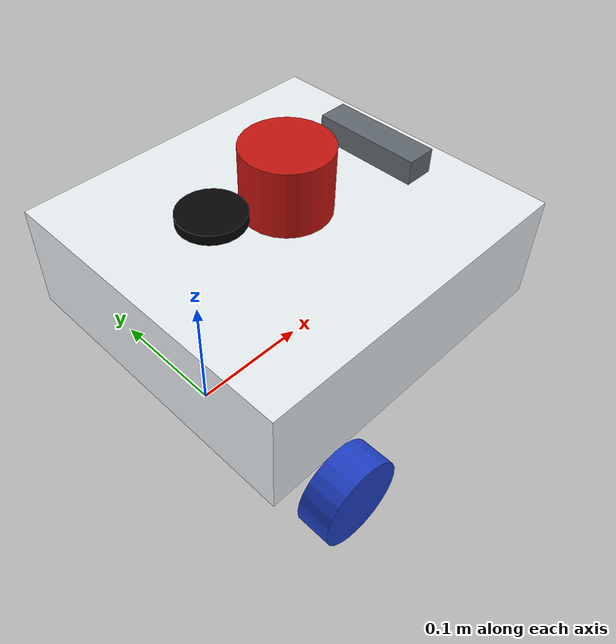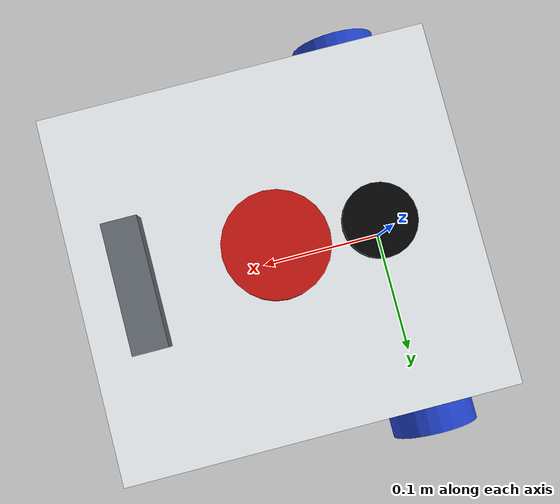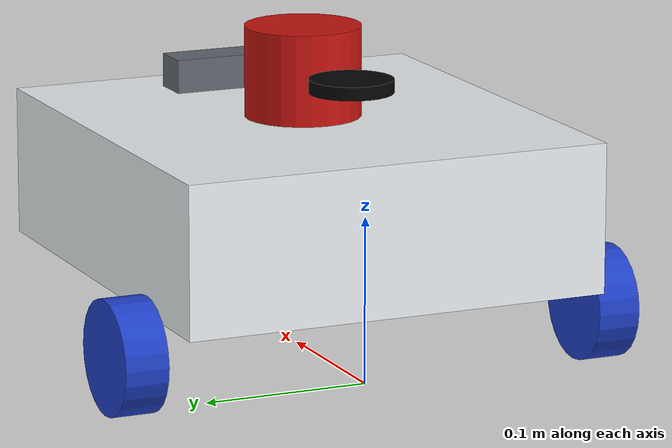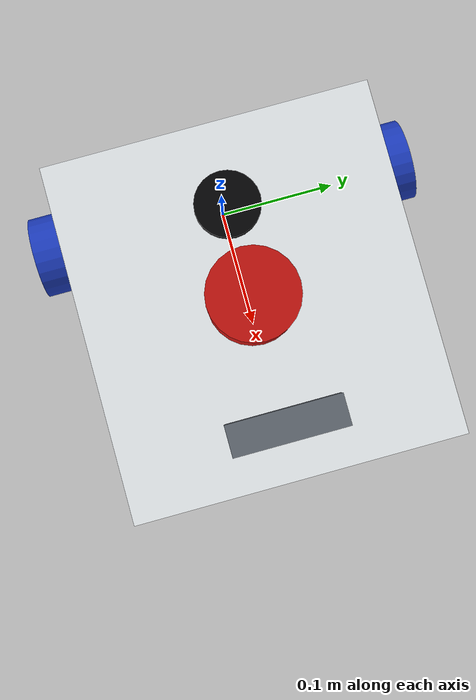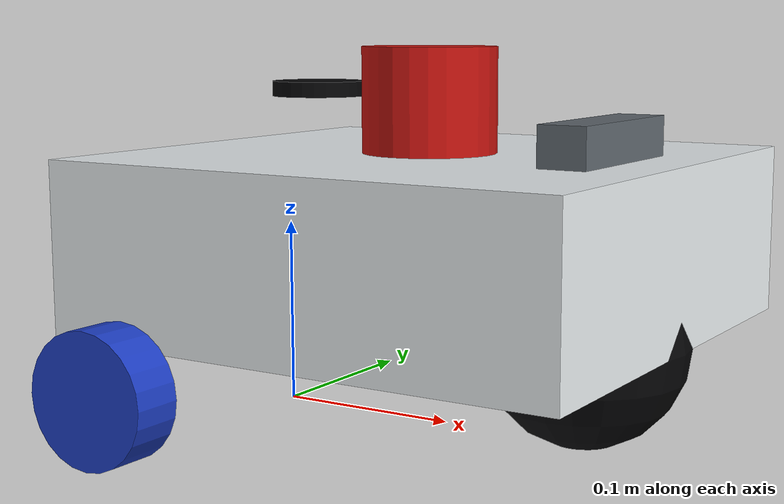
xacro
<?xml version="1.0"?>
<robot xmlns:xacro="http://www.ros.org/wiki/xacro" name="billiebot">
  <xacro:include filename="$(find billiebot_description)/urdf/inertial_macros.xacro"/>

  <xacro:arg name="use_lidar" default="true"/>
  <xacro:arg name="use_camera" default="true"/>
  <xacro:arg name="use_imu" default="true"/>
  <xacro:arg name="use_mic" default="true"/>

  <xacro:property name="wheel_radius" value="0.034"/>
  <xacro:property name="wheel_width" value="0.026"/>
  <xacro:property name="wheel_separation" value="0.298"/>
  <xacro:property name="chassis_x" value="0.28"/>
  <xacro:property name="chassis_y" value="0.26"/>
  <xacro:property name="chassis_z" value="0.09"/>

  <material name="billie_white"><color rgba="0.92 0.94 0.95 1.0"/></material>
  <material name="billie_blue"><color rgba="0.12 0.25 0.78 1.0"/></material>
  <material name="billie_black"><color rgba="0.02 0.02 0.025 1.0"/></material>
  <material name="billie_red"><color rgba="0.78 0.08 0.06 1.0"/></material>
  <material name="billie_gray"><color rgba="0.38 0.41 0.44 1.0"/></material>

  <!-- base_footprint is the ground-projected navigation frame. -->
  <link name="base_footprint"/>

  <joint name="base_footprint_joint" type="fixed">
    <parent link="base_footprint"/>
    <child link="base_link"/>
    <origin xyz="0 0 ${wheel_radius}" rpy="0 0 0"/>
  </joint>

  <!-- base_link is at the wheel axle center, matching the reference robot. -->
  <link name="base_link"/>

  <joint name="chassis_joint" type="fixed">
    <parent link="base_link"/>
    <child link="chassis_link"/>
    <origin xyz="0 0 0" rpy="0 0 0"/>
  </joint>

  <link name="chassis_link">
    <visual>
      <origin xyz="0.09 0 0.0635" rpy="0 0 0"/>
      <geometry><box size="${chassis_x} ${chassis_y} ${chassis_z}"/></geometry>
      <material name="billie_white"/>
    </visual>
    <collision>
      <origin xyz="0.09 0 0.0635" rpy="0 0 0"/>
      <geometry><box size="${chassis_x} ${chassis_y} ${chassis_z}"/></geometry>
    </collision>
    <xacro:inertial_box mass="0.5" x="${chassis_x}" y="${chassis_y}" z="${chassis_z}">
      <origin xyz="0.09 0 0.0635" rpy="0 0 0"/>
    </xacro:inertial_box>
  </link>

  <joint name="left_wheel_joint" type="continuous">
    <parent link="base_link"/>
    <child link="left_wheel_link"/>
    <origin xyz="0 ${wheel_separation/2.0} 0" rpy="${-pi/2} 0 0"/>
    <axis xyz="0 0 1"/>
    <limit effort="1.0" velocity="10.0"/>
  </joint>

  <link name="left_wheel_link">
    <visual>
      <geometry><cylinder length="${wheel_width}" radius="${wheel_radius}"/></geometry>
      <material name="billie_blue"/>
    </visual>
    <collision>
      <geometry><cylinder length="${wheel_width}" radius="${wheel_radius}"/></geometry>
    </collision>
    <xacro:inertial_cylinder mass="0.1" length="${wheel_width}" radius="${wheel_radius}">
      <origin xyz="0 0 0" rpy="0 0 0"/>
    </xacro:inertial_cylinder>
  </link>

  <joint name="right_wheel_joint" type="continuous">
    <parent link="base_link"/>
    <child link="right_wheel_link"/>
    <origin xyz="0 ${-wheel_separation/2.0} 0" rpy="${pi/2} 0 0"/>
    <axis xyz="0 0 -1"/>
    <limit effort="1.0" velocity="10.0"/>
  </joint>

  <link name="right_wheel_link">
    <visual>
      <geometry><cylinder length="${wheel_width}" radius="${wheel_radius}"/></geometry>
      <material name="billie_blue"/>
    </visual>
    <collision>
      <geometry><cylinder length="${wheel_width}" radius="${wheel_radius}"/></geometry>
    </collision>
    <xacro:inertial_cylinder mass="0.1" length="${wheel_width}" radius="${wheel_radius}">
      <origin xyz="0 0 0" rpy="0 0 0"/>
    </xacro:inertial_cylinder>
  </link>

  <joint name="caster_joint" type="fixed">
    <parent link="chassis_link"/>
    <child link="caster_link"/>
    <origin xyz="0.18 0 0.0185" rpy="0 0 0"/>
  </joint>

  <link name="caster_link">
    <visual>
      <geometry><sphere radius="0.0525"/></geometry>
      <material name="billie_black"/>
    </visual>
    <collision>
      <geometry><sphere radius="0.0525"/></geometry>
    </collision>
    <xacro:inertial_sphere mass="0.1" radius="0.0525">
      <origin xyz="0 0 0" rpy="0 0 0"/>
    </xacro:inertial_sphere>
  </link>

  <xacro:if value="$(arg use_lidar)">
    <joint name="laser_joint" type="fixed">
      <parent link="chassis_link"/>
      <child link="laser_frame"/>
      <origin xyz="0.09 0.0 0.13575" rpy="0 0 0"/>
    </joint>
    <link name="laser_frame">
      <visual>
        <geometry><cylinder radius="0.035" length="0.0545"/></geometry>
        <material name="billie_red"/>
      </visual>
      <collision><geometry><cylinder radius="0.035" length="0.0545"/></geometry></collision>
      <xacro:inertial_cylinder mass="0.170" length="0.0545" radius="0.035">
        <origin xyz="0 0 0" rpy="0 0 0"/>
      </xacro:inertial_cylinder>
    </link>
  </xacro:if>

  <xacro:if value="$(arg use_camera)">
    <joint name="oak_camera_joint" type="fixed">
      <parent link="chassis_link"/>
      <child link="oak_camera_frame"/>
      <origin xyz="0.20 0 0.115" rpy="0 0 0"/>
    </joint>
    <link name="oak_camera_frame">
      <visual>
        <origin xyz="-0.0125 0 0" rpy="0 0 0"/>
        <geometry><box size="0.025 0.091 0.028"/></geometry>
        <material name="billie_gray"/>
      </visual>
    </link>
    <joint name="oak_camera_optical_joint" type="fixed">
      <parent link="oak_camera_frame"/>
      <child link="oak_camera_optical_frame"/>
      <origin xyz="0 0 0" rpy="${-pi/2} 0 ${-pi/2}"/>
    </joint>
    <link name="oak_camera_optical_frame"/>
  </xacro:if>

  <xacro:if value="$(arg use_imu)">
    <joint name="imu_joint" type="fixed">
      <parent link="chassis_link"/>
      <child link="imu_link"/>
      <origin xyz="0.04 0 0.105" rpy="0 0 0"/>
    </joint>
    <link name="imu_link">
      <visual>
        <geometry><box size="0.025 0.02 0.006"/></geometry>
        <material name="billie_black"/>
      </visual>
    </link>
  </xacro:if>

  <xacro:if value="$(arg use_mic)">
    <joint name="mic_joint" type="fixed">
      <parent link="chassis_link"/>
      <child link="mic_link"/>
      <origin xyz="0.02 0 0.14" rpy="0 0 0"/>
    </joint>
    <link name="mic_link">
      <visual>
        <geometry><cylinder radius="0.025" length="0.008"/></geometry>
        <material name="billie_black"/>
      </visual>
    </link>
  </xacro:if>
</robot>

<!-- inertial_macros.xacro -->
<robot xmlns:xacro="http://www.ros.org/wiki/xacro">
  <xacro:macro name="inertial_sphere" params="mass radius *origin">
    <inertial>
      <xacro:insert_block name="origin"/>
      <mass value="${mass}"/>
      <inertia
        ixx="${(2/5) * mass * (radius*radius)}" ixy="0.0" ixz="0.0"
        iyy="${(2/5) * mass * (radius*radius)}" iyz="0.0"
        izz="${(2/5) * mass * (radius*radius)}"/>
    </inertial>
  </xacro:macro>

  <xacro:macro name="inertial_box" params="mass x y z *origin">
    <inertial>
      <xacro:insert_block name="origin"/>
      <mass value="${mass}"/>
      <inertia
        ixx="${(1/12) * mass * (y*y+z*z)}" ixy="0.0" ixz="0.0"
        iyy="${(1/12) * mass * (x*x+z*z)}" iyz="0.0"
        izz="${(1/12) * mass * (x*x+y*y)}"/>
    </inertial>
  </xacro:macro>

  <xacro:macro name="inertial_cylinder" params="mass length radius *origin">
    <inertial>
      <xacro:insert_block name="origin"/>
      <mass value="${mass}"/>
      <inertia
        ixx="${(1/12) * mass * (3*radius*radius + length*length)}" ixy="0.0" ixz="0.0"
        iyy="${(1/12) * mass * (3*radius*radius + length*length)}" iyz="0.0"
        izz="${(1/2) * mass * (radius*radius)}"/>
    </inertial>
  </xacro:macro>
</robot>
